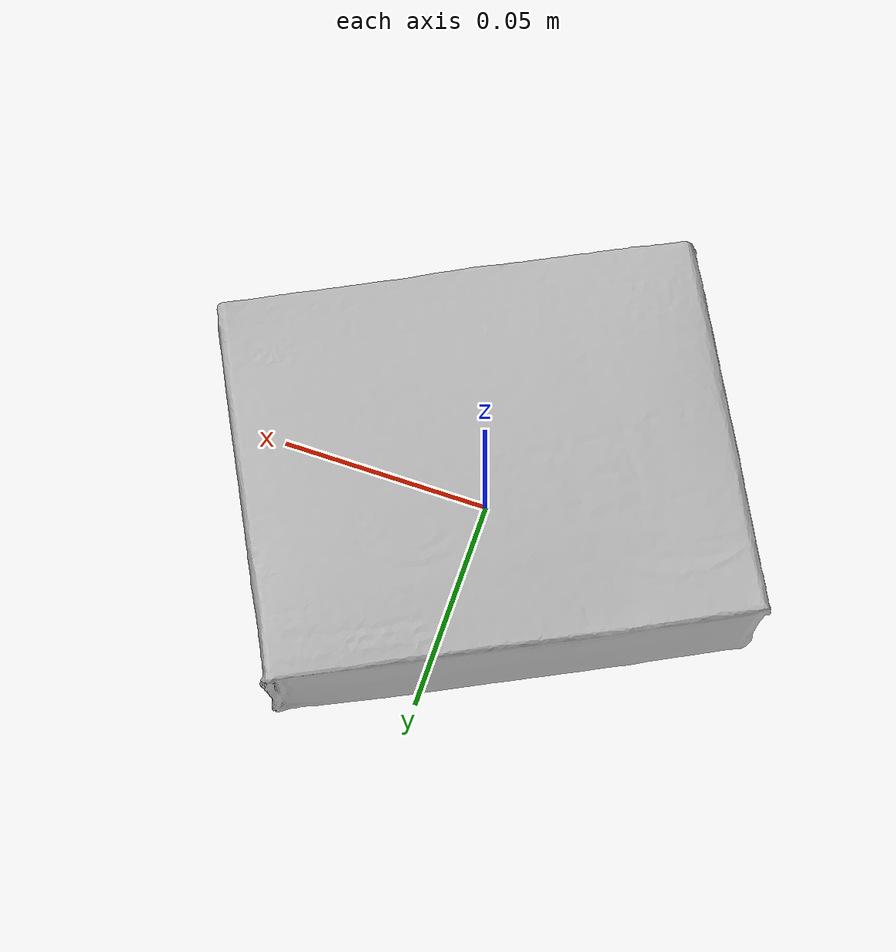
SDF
<?xml version="1.0" ?>
<sdf version="1.8">
  <model name='ycb_003_jell-o_chocolate_pudding_box'>
    <link name='body'>
      <inertial>
        <mass>0.461392313357</mass>
        <pose>0.00057364957 -0.000928117935 0.019088702 0 0 0</pose>
        <inertia>
          <ixx>0.000374350992977</ixx>
          <ixy>-6.77018723742e-05</ixy>
          <ixz>-8.97042921235e-06</ixz>
          <iyy>0.000466731380307</iyy>
          <iyz>-2.84182045532e-06</iyz>
          <izz>0.000744234813757</izz>
        </inertia>
      </inertial>

      <visual name='ycb_003_jell-o_chocolate_pudding_box_visual'>
        <pose>-0.000944 -0.019724 0.000431 0 0 0</pose>
        <geometry>
          <mesh>
            <uri>model://ycb_003_jell-o_chocolate_pudding_box/meshes/textured.dae</uri>
          </mesh>
        </geometry>
      </visual>

      <collision name='ycb_003_jell-o_chocolate_pudding_box_collision'>
        <pose>-0.000944 -0.019724 0.000431 0 0 0</pose>
        <geometry>
          <mesh>
            <uri>model://ycb_003_jell-o_chocolate_pudding_box/meshes/nontextured.stl</uri>
          </mesh>
        </geometry>
        <max_contacts>10</max_contacts>
      </collision>
    </link>
  </model>
</sdf>
